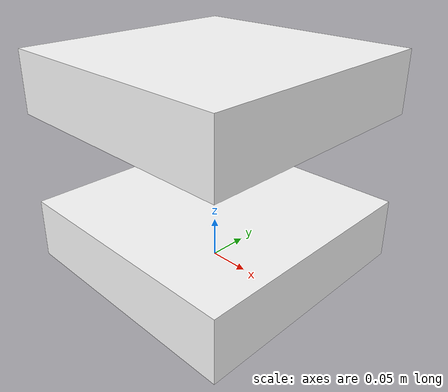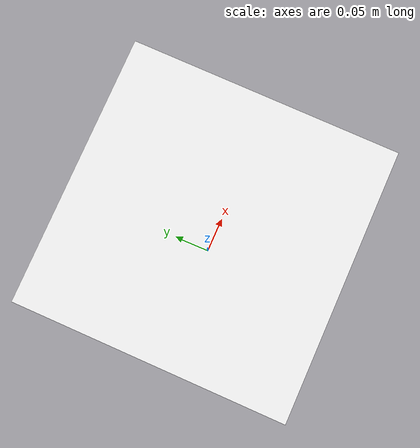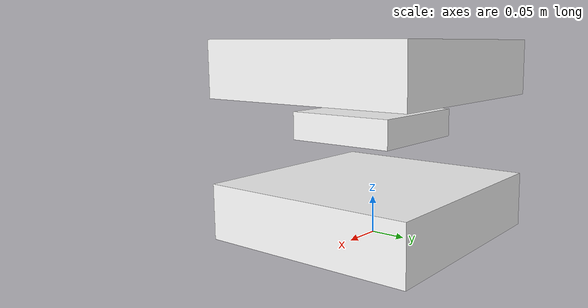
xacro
<?xml version="1.0"?>
<robot xmlns:xacro="http://www.ros.org/wiki/xacro">

    <xacro:include filename="inertial_macros.xacro"/>

    <material name="white">
        <color rgba="1 1 1 1"/>
    </material>

    <material name="orange">
        <color rgba="1 0.3 0.1 1"/>
    </material>

    <material name="blue">
        <color rgba="0.2 0.2 1 1"/>
    </material>

    <material name="black">
        <color rgba="0 0 0 1"/>
    </material>

    <material name="red">
        <color rgba="1 0 0 1"/>
    </material>

    <material name="silver">
        <color rgba="0.7725490196078432 0.788235294117647 0.7803921568627451 1.0"/>
    </material>

    <!-- BASE LINK -->

    <link name="base_link">

    </link>

    <!-- BASE_FOOTPRINT LINK-->

    <joint name="base_footprint_joint" type="fixed">
        <parent link="base_link"/>
        <child link="base_footprint"/>
        <origin xyz="0 0 0" rpy="0 0 0"/>
    </joint>

    <link name="base_footprint">
    </link>

    <!-- BOTTOM BOX LINK -->

    <joint name="bottom_box_joint" type="fixed">
        <parent link="base_link"/>
        <child link="bottom_box"/>
        <origin xyz="-0.15 0 0"/>
    </joint>

    <link name="bottom_box">
        <visual>
            <origin xyz="0.15 0 0.0375"/>
            <geometry>
                <box size="0.3 0.3 0.075"/>
            </geometry>
            <material name ="white"/>
        </visual>
        <collision>
            <origin xyz="0.15 0 0.0375"/>
            <geometry>
                <box size="0.3 0.3 0.075"/>
            </geometry>
        </collision>
        <xacro:inertial_box mass="0.5" x="0.3" y="0.3" z="0.075">
            <origin xyz="0.15 0 0.0375" rpy="0 0 0"/>
        </xacro:inertial_box>
    </link>

    <gazebo reference="bottom_box">
        <material>Gazebo/White</material>
    </gazebo>

    <!-- MIDDLE BOX LINK -->

    <joint name="middle_box_joint" type="fixed">
        <parent link="base_link"/>
        <child link="middle_box"/>
        <origin xyz="0 0 0.075"/>
    </joint>

    <link name="middle_box">
        <visual>
            <origin xyz="0 0 0.075"/>
            <geometry>
                <box size="0.15 0.15 0.0375"/>
            </geometry>
            <material name ="white"/>
        </visual>
        <collision>
            <origin xyz="0 0 0.075"/>
            <geometry>
                <box size="0.15 0.15 0.0375"/>
            </geometry>
        </collision>
        <xacro:inertial_box mass="0.5" x="0.15" y="0.15" z="0.0375">
            <origin xyz="0 0 0.075" rpy="0 0 0"/>
        </xacro:inertial_box>
    </link>

    <gazebo reference="middle_box">
        <material>Gazebo/White</material>
    </gazebo>

    <!-- UPPER BOX LINK -->

    <joint name="upper_box_joint" type="fixed">
        <parent link="base_link"/>
        <child link="upper_box"/>
        <origin xyz="0 0 0.1125"/>
    </joint>

    <link name="upper_box">
        <visual>
            <origin xyz="0 0 0.1125"/>
            <geometry>
                <box size="0.3 0.3 0.075"/>
            </geometry>
            <material name ="white"/>
        </visual>
        <collision>
            <origin xyz="0 0 0.1125"/>
            <geometry>
                <box size="0.3 0.3 0.075"/>
            </geometry>
        </collision>
        <xacro:inertial_box mass="0.5" x="0.3" y="0.3" z="0.075">
            <origin xyz="0 0 0.1125" rpy="0 0 0"/>
        </xacro:inertial_box>
    </link>

    <gazebo reference="upper_box">
        <material>Gazebo/White</material>
    </gazebo>

</robot>

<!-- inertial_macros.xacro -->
<robot xmlns:xacro="http://www.ros.org/wiki/xacro" >

    <!-- Specify some standard inertial calculations https://en.wikipedia.org/wiki/List_of_moments_of_inertia -->
    <!-- These make use of xacro's mathematical functionality -->

    <xacro:macro name="inertial_sphere" params="mass radius *origin">
        <inertial>
            <xacro:insert_block name="origin"/>
            <mass value="${mass}" />
            <inertia ixx="${(2/5) * mass * (radius*radius)}" ixy="0.0" ixz="0.0"
                    iyy="${(2/5) * mass * (radius*radius)}" iyz="0.0"
                    izz="${(2/5) * mass * (radius*radius)}" />
        </inertial>
    </xacro:macro>

    <xacro:macro name="inertial_box" params="mass x y z *origin">
        <inertial>
            <xacro:insert_block name="origin"/>
            <mass value="${mass}" />
            <inertia ixx="${(1/12) * mass * (y*y+z*z)}" ixy="0.0" ixz="0.0"
                    iyy="${(1/12) * mass * (x*x+z*z)}" iyz="0.0"
                    izz="${(1/12) * mass * (x*x+y*y)}" />
        </inertial>
    </xacro:macro>

    <xacro:macro name="inertial_cylinder" params="mass length radius *origin">
        <inertial>
            <xacro:insert_block name="origin"/>
            <mass value="${mass}" />
            <inertia ixx="${(1/12) * mass * (3*radius*radius + length*length)}" ixy="0.0" ixz="0.0"
                    iyy="${(1/12) * mass * (3*radius*radius + length*length)}" iyz="0.0"
                    izz="${(1/2) * mass * (radius*radius)}" />
        </inertial>
    </xacro:macro>

    <xacro:macro name="inertial_doughnut" params="mass x y z *origin">
        <inertial>
            <xacro:insert_block name="origin"/>
            <mass value="${mass}" />
            <inertia ixx="${(1/12) * mass * (y*y + z*z)}" ixy="0.0" ixz="0.0"
                    iyy="${(1/12) * mass * (x*x + z*z)}" iyz="0.0"
                    izz="${(1/12) * mass * (x*x + y*y)}" />
        </inertial>
    </xacro:macro>

</robot>
